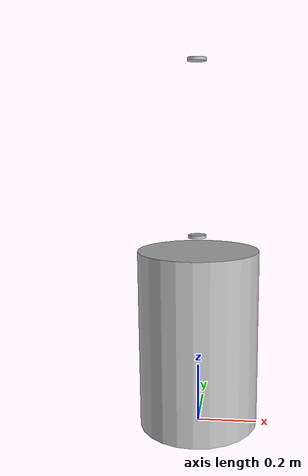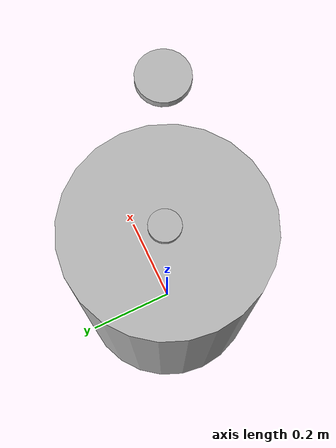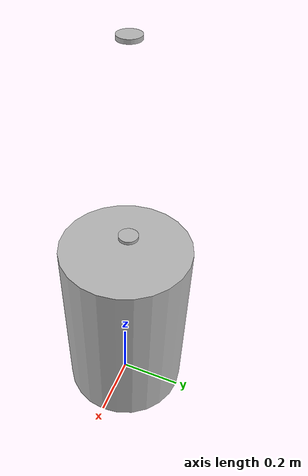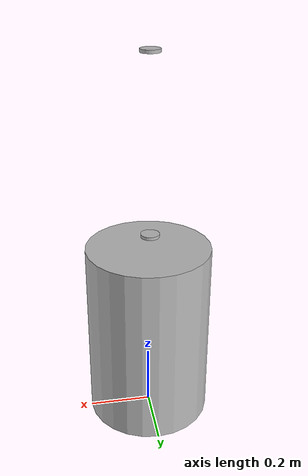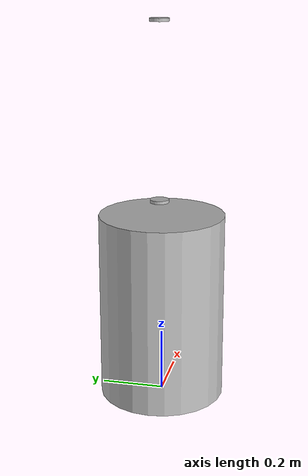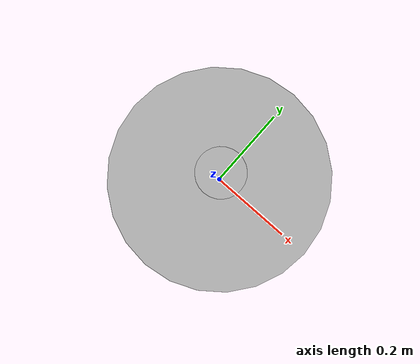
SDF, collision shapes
<?xml version="1.0" encoding="UTF-8"?>
<sdf version="1.4">
   <model name="nubot1">
      <static>false</static>
      <link name="chassis">
         <pose>0 0 0.3 0 0 0</pose>
         <inertial>
            <mass>31</mass>
            <pose>0 0 0 0 0 0</pose>
            <inertia>
               <ixx>100</ixx>
               <ixy>0</ixy>
               <ixz>0</ixz>
               <iyy>100</iyy>
               <iyz>0</iyz>
               <izz>2.86</izz>
            </inertia>
         </inertial>
         <collision name="robot_collision">
            <pose>0 0 0 0 0 0</pose>
            <geometry>
               <cylinder>
                  <radius>0.20</radius>
                  <length>0.6</length>
               </cylinder>
            </geometry>
            <surface>
               <bounce>
                  <restitution_coefficient>0</restitution_coefficient>
               </bounce>
               <friction>
                  <ode>
                     <mu>0.1</mu>
                     <mu2>0.1</mu2>
                  </ode>
               </friction>
            </surface>
         </collision>
         <visual name="visual">
            <pose>0 0.04 -0.68 0 0 1.57</pose>
            <geometry>
               <mesh>
                  <scale>0.0009 0.0009 0.001</scale>
                  <uri>file://meshes/nubot_frame/robot6th.stl</uri>
               </mesh>
            </geometry>
         </visual>
         <velocity_decay>
            <linear>0</linear>
            <angular>0</angular>
         </velocity_decay>
         <self_collide>0</self_collide>
         <gravity>1</gravity>
      </link>

      <joint name="ob_scan_joint" type="fixed">
         <parent>chassis</parent>
         <child>base_scan</child>
         <pose>0 0.0 0 0 0 0</pose>
         <axis>
            <xyz>0 0 1</xyz>
         </axis>
      </joint>

      <joint name="scan_joint" type="fixed">
         <parent>chassis</parent>
         <child>base_scan_red</child>
         <pose>0 0.0 0 0 0 0</pose>
         <axis>
            <xyz>0 0 1</xyz>
         </axis>
      </joint>

      <link name="base_scan">
         <pose>-0.003869 0.006836 0.645 0 0 0</pose>

         <collision name="box_collision">
            <geometry>
            <cylinder>
              <radius>.03</radius>
              <length>.01</length>
            </cylinder>
            </geometry>
         </collision>

         <visual name="visual">
            <geometry>
            <cylinder>
              <radius>.03</radius>
              <length>.01</length>
            </cylinder>
            </geometry>
         </visual>
         <sensor type="ray" name="lds_lfcd_sensor">
            <pose>0 0 -0.005 0 0 0</pose>
            <visualize>false</visualize>
            <update_rate>30</update_rate>
            <ray>
            <scan>
               <horizontal>
                  <samples>120</samples>
                  <resolution>1</resolution>
                  <min_angle>0.0</min_angle>
                  <max_angle>6.28</max_angle>
               </horizontal>
            </scan>
            <range>
               <min>0.20</min>
               <max>2.5</max>
               <resolution>0.015</resolution>
            </range>
            <noise>
               <type>gaussian</type>
               <mean>0.0</mean>
               <stddev>0.01</stddev>
            </noise>
            </ray>
            <plugin name="gazebo_ros_lds_lfcd_controller" filename="libgazebo_ros_laser.so">
            <topicName>ob_scan</topicName>
            <frameName>base_scan</frameName>
            </plugin>
         </sensor>
      </link>

      <link name="base_scan_red">
         <pose>-0.003869 0.006836 1.2 0 0 0</pose>

         <collision name="box_collision">
            <geometry>
            <cylinder>
              <radius>.03</radius>
              <length>.01</length>
            </cylinder>
            </geometry>
         </collision>

         <visual name="visual">
            <geometry>
            <cylinder>
              <radius>.03</radius>
              <length>.01</length>
            </cylinder>
            </geometry>
         </visual>
         <sensor type="ray" name="lds_lfcd_sensor">
            <pose>0 0 -0.005 0 0 0</pose>
            <visualize>false</visualize>
            <update_rate>30</update_rate>
            <ray>
            <scan>
               <horizontal>
                  <samples>120</samples>
                  <resolution>1</resolution>
                  <min_angle>0.0</min_angle>
                  <max_angle>6.28</max_angle>
               </horizontal>
            </scan>
            <range>
               <min>0.20</min>
               <max>2.5</max>
               <resolution>0.015</resolution>
            </range>
            <noise>
               <type>gaussian</type>
               <mean>0.0</mean>
               <stddev>0.01</stddev>
            </noise>
            </ray>
            <plugin name="gazebo_ros_lds_lfcd_controller" filename="libgazebo_ros_laser.so">
            <topicName>scan</topicName>
            <frameName>base_scan_red</frameName>
            </plugin>
         </sensor>
      </link>

      <plugin name="nubot_gazebo" filename="libnubot_gazebo.so" />

   </model>
</sdf>
